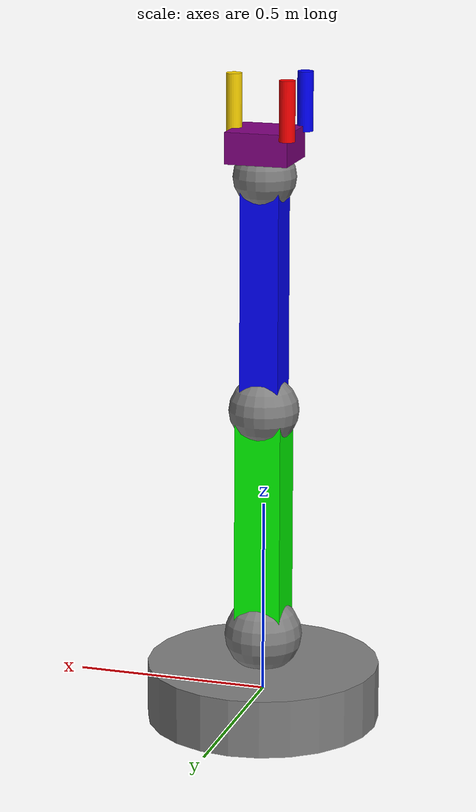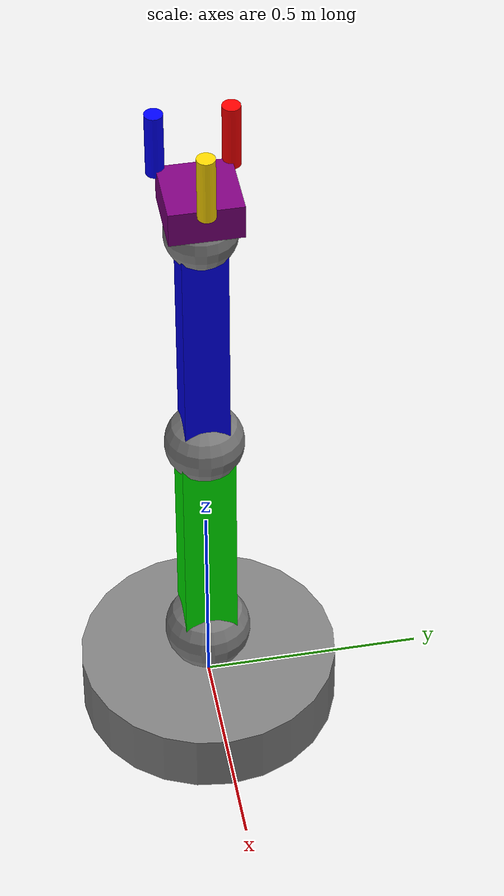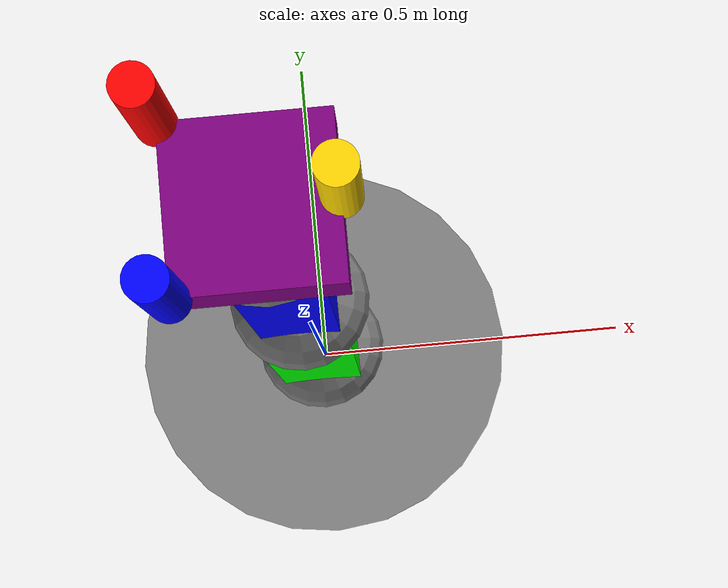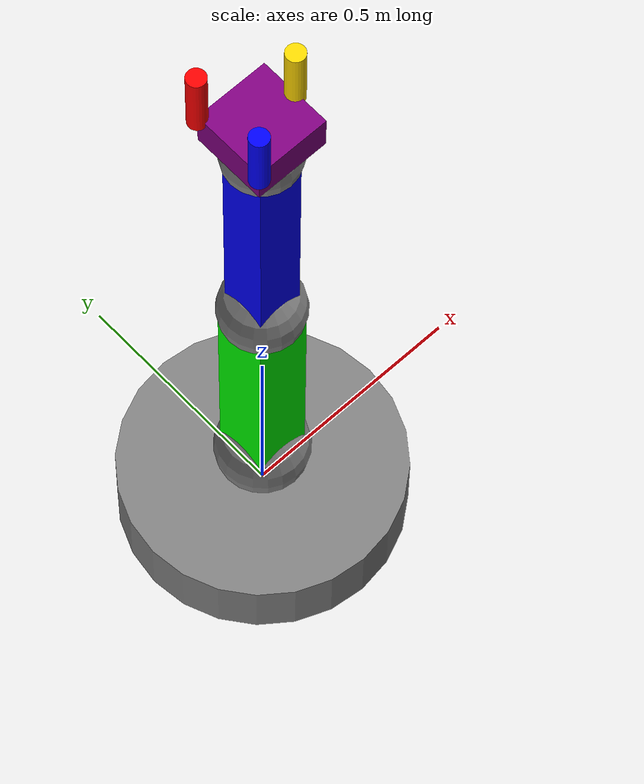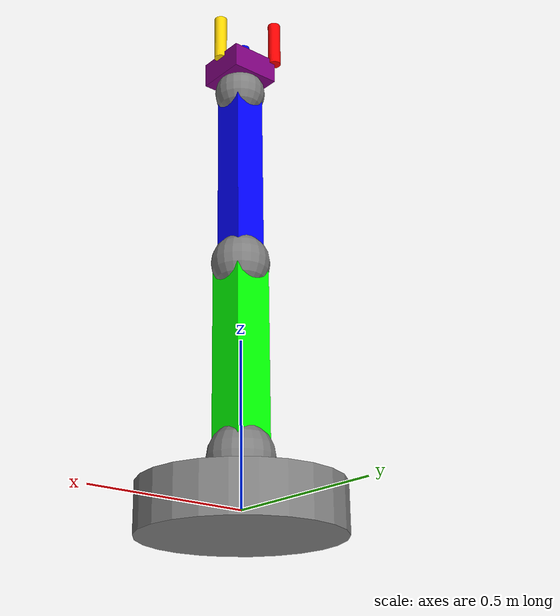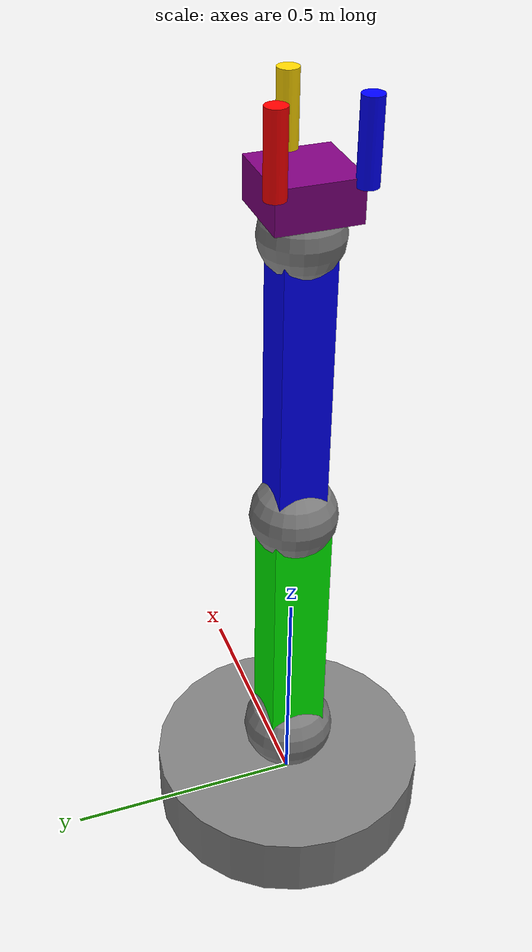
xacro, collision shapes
<?xml version="1.0"?>
<robot xmlns:xacro="http://www.ros.org/wiki/xacro" name="industrial_arm_5dof">

  <!-- MATERIALS -->
  <material name="grey"><color rgba="0.5 0.5 0.5 1.0"/></material>
  <material name="green"><color rgba="0 1 0 1"/></material>
  <material name="blue"><color rgba="0 0 1 1"/></material>
  <material name="purple"><color rgba="0.5 0 0.5 1"/></material>
  <material name="yellow"><color rgba="1 0.84 0 1"/></material>
  <material name="red"><color rgba="1 0 0 1"/></material>

  <!-- BASE - EXTRA HEAVY FOR STABILITY WITH LONGER ARM -->
  <link name="base_link">
    <visual>
      <geometry><cylinder radius="0.30" length="0.15"/></geometry>
      <material name="grey"/>
    </visual>
    <collision>
      <geometry><cylinder radius="0.30" length="0.15"/></geometry>
    </collision>
    <inertial>
      <mass value="50.0"/>
      <origin xyz="0 0 0"/>
      <inertia ixx="0.8" iyy="0.8" izz="0.5" ixy="0" ixz="0" iyz="0"/>
    </inertial>
  </link>

  <!-- SHOULDER JOINT - Mounted higher -->
  <joint name="shoulder_pitch_joint" type="revolute">
    <parent link="base_link"/>
    <child link="shoulder_sphere_link"/>
    <origin xyz="0 0 0.15"/>
    <axis xyz="0 0 1"/>
    <limit lower="-3.14" upper="3.14" effort="100" velocity="2.0"/>
  </joint>

  <!-- SHOULDER SPHERE -->
  <link name="shoulder_sphere_link">
    <visual><geometry><sphere radius="0.10"/></geometry><material name="grey"/></visual>
    <collision><geometry><sphere radius="0.10"/></geometry></collision>
    <inertial>
      <mass value="1.5"/>
      <origin xyz="0 0 0"/>
      <inertia ixx="0.01" iyy="0.01" izz="0.01" ixy="0" ixz="0" iyz="0"/>
    </inertial>
  </link>

  <!-- SHOULDER ROLL JOINT -->
  <joint name="shoulder_roll_joint" type="revolute">
    <parent link="shoulder_sphere_link"/>
    <child link="upper_arm_link"/>
    <origin xyz="0 0 0"/>
    <axis xyz="0 1 0"/>
    <limit lower="-2.0" upper="1.8" effort="150" velocity="1.5"/>
  </joint>

  <!-- UPPER ARM -->
  <link name="upper_arm_link">
    <visual>
      <origin xyz="0 0 0.30"/>
      <geometry><box size="0.12 0.12 0.60"/></geometry>
      <material name="green"/>
    </visual>
    <collision>
      <origin xyz="0 0 0.30"/>
      <geometry><box size="0.12 0.12 0.60"/></geometry>
    </collision>
    <inertial>
      <mass value="2.0"/>
      <origin xyz="0 0 0.30"/>
      <inertia ixx="0.02" iyy="0.02" izz="0.02" ixy="0" ixz="0" iyz="0"/>
    </inertial>
  </link>

  <!-- ELBOW JOINT -->
  <joint name="elbow_joint" type="revolute">
    <parent link="upper_arm_link"/>
    <child link="elbow_sphere_link"/>
    <origin xyz="0 0 0.60"/>
    <axis xyz="0 1 0"/>
    <limit lower="-1.8" upper="2.5" effort="80" velocity="2.0"/>
  </joint>

  <!-- ELBOW SPHERE -->
  <link name="elbow_sphere_link">
    <visual><geometry><sphere radius="0.09"/></geometry><material name="grey"/></visual>
    <collision><geometry><sphere radius="0.09"/></geometry></collision>
    <inertial>
      <mass value="1.0"/>
      <origin xyz="0 0 0"/>
      <inertia ixx="0.008" iyy="0.008" izz="0.008" ixy="0" ixz="0" iyz="0"/>
    </inertial>
  </link>

  <!-- FOREARM FIXED JOINT - ADDED ORIGIN -->
  <joint name="forearm_fixed" type="fixed">
    <parent link="elbow_sphere_link"/>
    <child link="forearm_link"/>
    <origin xyz="0 0 0"/>
  </joint>

  <!-- FOREARM -->
  <link name="forearm_link">
    <visual>
      <origin xyz="0 0 0.30"/>
      <geometry><box size="0.10 0.10 0.60"/></geometry>
      <material name="blue"/>
    </visual>
    <collision>
      <origin xyz="0 0 0.30"/>
      <geometry><box size="0.10 0.10 0.60"/></geometry>
    </collision>
    <inertial>
      <mass value="1.6"/>
      <origin xyz="0 0 0.30"/>
      <inertia ixx="0.016" iyy="0.016" izz="0.016" ixy="0" ixz="0" iyz="0"/>
    </inertial>
  </link>

  <!-- WRIST JOINT -->
  <joint name="wrist_joint" type="revolute">
    <parent link="forearm_link"/>
    <child link="wrist_sphere_link"/>
    <origin xyz="0 0 0.60"/>
    <axis xyz="0 1 0"/>
    <limit lower="-2.0" upper="1.8" effort="40" velocity="3.0"/>
  </joint>

  <!-- WRIST SPHERE -->
  <link name="wrist_sphere_link">
    <visual><geometry><sphere radius="0.08"/></geometry><material name="grey"/></visual>
    <collision><geometry><sphere radius="0.08"/></geometry></collision>
    <inertial>
      <mass value="0.6"/>
      <origin xyz="0 0 0"/>
      <inertia ixx="0.006" iyy="0.006" izz="0.006" ixy="0" ixz="0" iyz="0"/>
    </inertial>
  </link>

  <!-- PALM FIXED JOINT - ADDED ORIGIN -->
  <joint name="palm_fixed" type="fixed">
    <parent link="wrist_sphere_link"/>
    <child link="palm_link"/>
    <origin xyz="0 0 0.04"/>
  </joint>

  <!-- PALM -->
  <link name="palm_link">
    <visual>
      <origin xyz="0 0 0.04"/>
      <geometry><box size="0.16 0.16 0.08"/></geometry>
      <material name="purple"/>
    </visual>
    <collision>
      <origin xyz="0 0 0.04"/>
      <geometry><box size="0.16 0.16 0.08"/></geometry>
    </collision>
    <inertial>
      <mass value="0.4"/>
      <origin xyz="0 0 0.04"/>
      <inertia ixx="0.004" iyy="0.004" izz="0.004" ixy="0" ixz="0" iyz="0"/>
    </inertial>
  </link>

  <!-- GRIPPER JOINT -->
  <joint name="gripper_joint" type="revolute">
    <parent link="palm_link"/>
    <child link="f1_link"/>
    <origin xyz="0.08 0 0.08"/>
    <axis xyz="0 1 0"/>
    <limit lower="-0.8" upper="0" effort="20" velocity="2.0"/>
  </joint>

  <!-- FINGER 1 -->
  <link name="f1_link">
    <visual>
      <origin xyz="0 0 0.06"/>
      <geometry><cylinder radius="0.02" length="0.15"/></geometry>
      <material name="yellow"/>
    </visual>
    <collision>
      <origin xyz="0 0 0.06"/>
      <geometry><cylinder radius="0.02" length="0.15"/></geometry>
    </collision>
    <inertial>
      <mass value="0.15"/>
      <origin xyz="0 0 0.06"/>
      <inertia ixx="0.0008" iyy="0.0008" izz="0.0008" ixy="0" ixz="0" iyz="0"/>
    </inertial>
  </link>

  <!-- F2 JOINT -->
  <joint name="f2_joint" type="revolute">
    <parent link="palm_link"/>
    <child link="f2_link"/>
    <origin xyz="-0.08 0.08 0.08"/>
    <axis xyz="0 1 0"/>
    <mimic joint="gripper_joint" multiplier="-1.0"/>
    <limit lower="0" upper="0.8" effort="20" velocity="2.0"/>
  </joint>

  <!-- FINGER 2 -->
  <link name="f2_link">
    <visual>
      <origin xyz="0 0 0.06"/>
      <geometry><cylinder radius="0.02" length="0.15"/></geometry>
      <material name="red"/>
    </visual>
    <collision>
      <origin xyz="0 0 0.06"/>
      <geometry><cylinder radius="0.02" length="0.15"/></geometry>
    </collision>
    <inertial>
      <mass value="0.15"/>
      <origin xyz="0 0 0.06"/>
      <inertia ixx="0.0008" iyy="0.0008" izz="0.0008" ixy="0" ixz="0" iyz="0"/>
    </inertial>
  </link>

  <!-- F3 JOINT -->
  <joint name="f3_joint" type="revolute">
    <parent link="palm_link"/>
    <child link="f3_link"/>
    <origin xyz="-0.08 -0.08 0.08"/>
    <axis xyz="0 1 0"/>
    <mimic joint="gripper_joint" multiplier="-1.0"/>
    <limit lower="0" upper="0.8" effort="20" velocity="2.0"/>
  </joint>

  <!-- FINGER 3 -->
  <link name="f3_link">
    <visual>
      <origin xyz="0 0 0.06"/>
      <geometry><cylinder radius="0.02" length="0.15"/></geometry>
      <material name="blue"/>
    </visual>
    <collision>
      <origin xyz="0 0 0.06"/>
      <geometry><cylinder radius="0.02" length="0.15"/></geometry>
    </collision>
    <inertial>
      <mass value="0.15"/>
      <origin xyz="0 0 0.06"/>
      <inertia ixx="0.0008" iyy="0.0008" izz="0.0008" ixy="0" ixz="0" iyz="0"/>
    </inertial>
  </link>

  <!-- GAZEBO MATERIAL MAPPINGS -->
  <gazebo reference="base_link">
    <material>Gazebo/Grey</material>
  </gazebo>

  <gazebo reference="upper_arm_link">
    <material>Gazebo/Green</material>
  </gazebo>

  <gazebo reference="forearm_link">
    <material>Gazebo/Blue</material>
  </gazebo>

  <gazebo reference="palm_link">
    <material>Gazebo/Purple</material>
  </gazebo>

  <gazebo reference="f1_link">
    <material>Gazebo/Yellow</material>
  </gazebo>

  <gazebo reference="f2_link">
    <material>Gazebo/Red</material>
  </gazebo>

  <gazebo reference="f3_link">
    <material>Gazebo/Blue</material>
  </gazebo>

  <!-- GAZEBO ROS CONTROL -->
  <gazebo>
    <plugin name="gazebo_ros_control" filename="libgazebo_ros_control.so"/>
  </gazebo>

  <!-- TRANSMISSIONS -->
  <transmission name="shoulder_pitch_trans">
    <type>transmission_interface/SimpleTransmission</type>
    <joint name="shoulder_pitch_joint">
      <hardwareInterface>hardware_interface/PositionJointInterface</hardwareInterface>
    </joint>
    <actuator name="motor1">
      <hardwareInterface>hardware_interface/PositionJointInterface</hardwareInterface>
      <mechanicalReduction>1</mechanicalReduction>
    </actuator>
  </transmission>

  <transmission name="shoulder_roll_trans">
    <type>transmission_interface/SimpleTransmission</type>
    <joint name="shoulder_roll_joint">
      <hardwareInterface>hardware_interface/PositionJointInterface</hardwareInterface>
    </joint>
    <actuator name="motor2">
      <hardwareInterface>hardware_interface/PositionJointInterface</hardwareInterface>
      <mechanicalReduction>1</mechanicalReduction>
    </actuator>
  </transmission>

  <transmission name="elbow_trans">
    <type>transmission_interface/SimpleTransmission</type>
    <joint name="elbow_joint">
      <hardwareInterface>hardware_interface/PositionJointInterface</hardwareInterface>
    </joint>
    <actuator name="motor3">
      <hardwareInterface>hardware_interface/PositionJointInterface</hardwareInterface>
      <mechanicalReduction>1</mechanicalReduction>
    </actuator>
  </transmission>

  <transmission name="wrist_trans">
    <type>transmission_interface/SimpleTransmission</type>
    <joint name="wrist_joint">
      <hardwareInterface>hardware_interface/PositionJointInterface</hardwareInterface>
    </joint>
    <actuator name="motor4">
      <hardwareInterface>hardware_interface/PositionJointInterface</hardwareInterface>
      <mechanicalReduction>1</mechanicalReduction>
    </actuator>
  </transmission>

  <transmission name="gripper_trans">
    <type>transmission_interface/SimpleTransmission</type>
    <joint name="gripper_joint">
      <hardwareInterface>hardware_interface/PositionJointInterface</hardwareInterface>
    </joint>
    <actuator name="motor5">
      <hardwareInterface>hardware_interface/PositionJointInterface</hardwareInterface>
      <mechanicalReduction>1</mechanicalReduction>
    </actuator>
  </transmission>

  <!-- ULTRASONIC SENSOR -->
  <link name="ultrasonic_link">
    <visual>
      <origin xyz="0 0 0" rpy="6.28318 6.28318 4.7124"/>
      <geometry>
        <mesh filename="package://rover_control/meshes/ultrasonic.dae" scale="0.007 0.005 0.005"/>
      </geometry>
    </visual>
    <inertial>
      <mass value="0.06"/>
      <inertia ixx="0.0006" iyy="0.0006" izz="0.0006" ixy="0" ixz="0" iyz="0"/>
    </inertial>
  </link>

  <joint name="ultrasonic_joint" type="fixed">
    <parent link="base_link"/>
    <child link="ultrasonic_link"/>
    <origin xyz="0.44 0.002 0.11"/>
  </joint>

  <gazebo reference="ultrasonic_link">
    <sensor type="ray" name="ultrasonic_sensor">
      <update_rate>20</update_rate>
      <ray>
        <range>
          <min>0.02</min>
          <max>7.0</max>
        </range>
      </ray>
      <plugin name="ultra_plugin" filename="libgazebo_ros_range.so">
        <robotNamespace>/manipulator</robotNamespace>
        <topicName>ultrasonic</topicName>
        <frameName>ultrasonic_link</frameName>
        <radiation>ultrasound</radiation>
        <fov>0.5</fov>
        <gaussianNoise>0.0</gaussianNoise>
        <updateRate>20</updateRate>
      </plugin>
    </sensor>
  </gazebo>

</robot>
